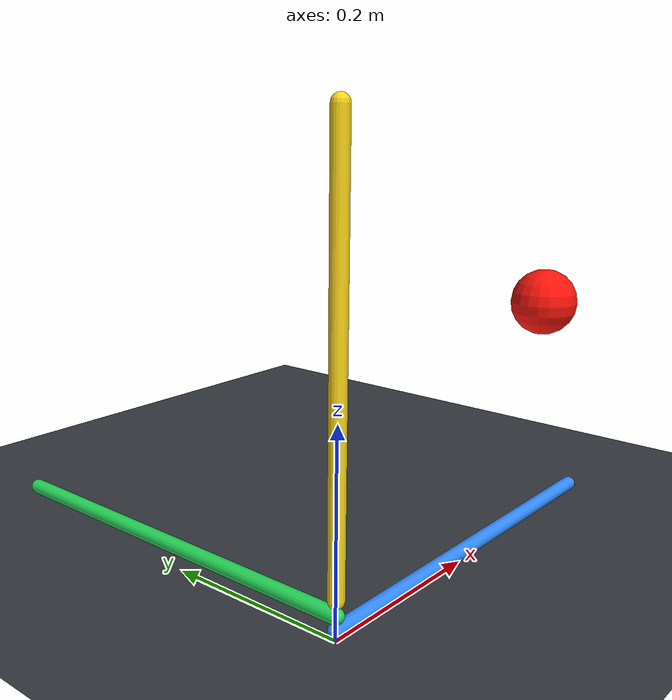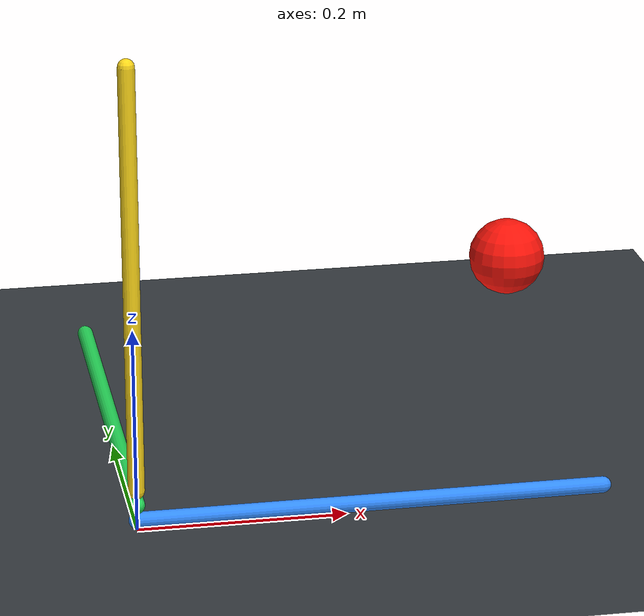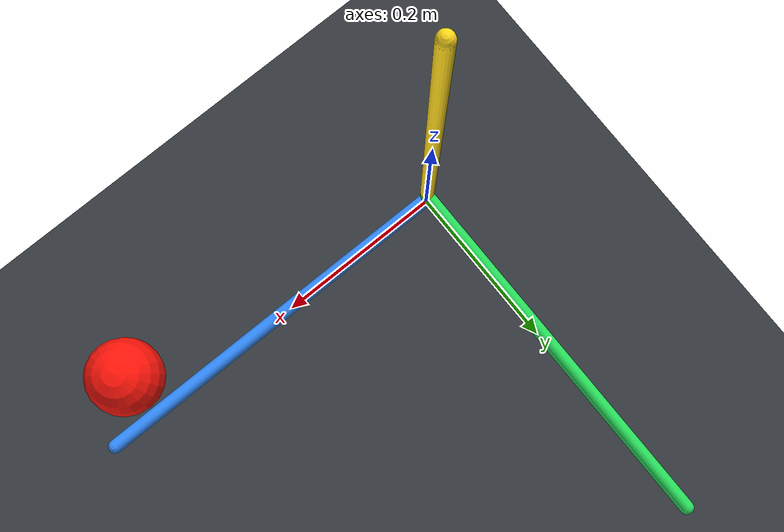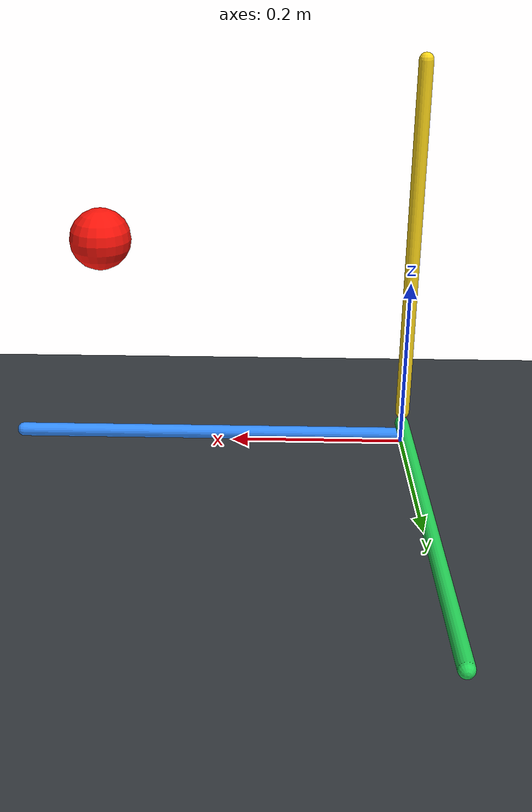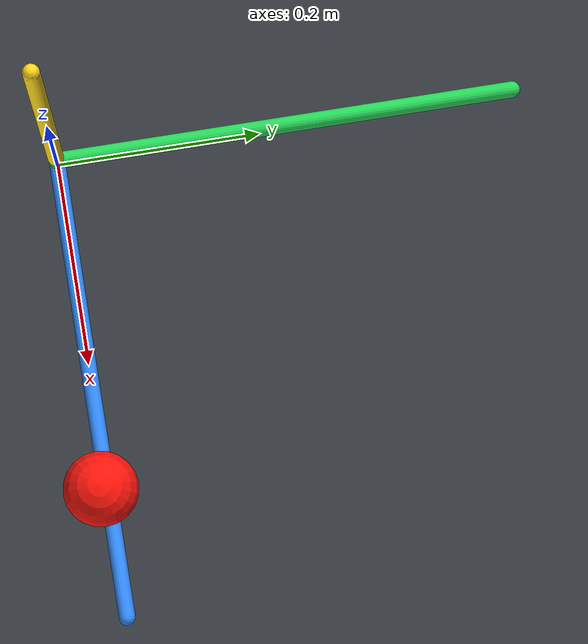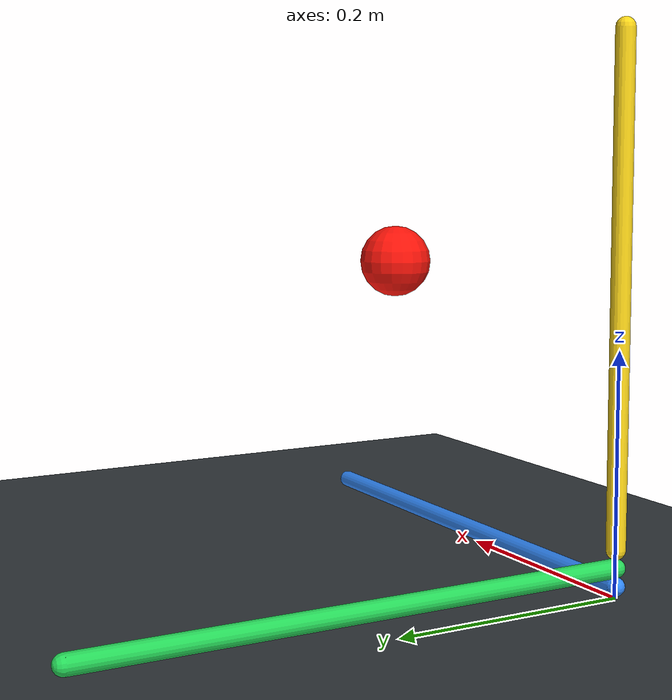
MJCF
<mujoco model="quest_arm_channel_target_ball">
  <compiler angle="radian"/>

  <option timestep="0.005" gravity="0 0 0"/>

  <visual>
    <headlight diffuse="0.6 0.6 0.6" ambient="0.35 0.35 0.35" specular="0.1 0.1 0.1"/>
    <rgba haze="0.15 0.18 0.22 1"/>
  </visual>

  <asset>
    <texture name="grid" type="2d" builtin="checker" width="512" height="512" rgb1="0.18 0.2 0.22" rgb2="0.24 0.26 0.28"/>
    <material name="grid" texture="grid" texrepeat="6 6" reflectance="0.05"/>
    <material name="target_red" rgba="1 0.08 0.04 0.9"/>
    <material name="forward_x" rgba="0.2 0.55 1 1"/>
    <material name="left_y" rgba="0.15 0.85 0.35 1"/>
    <material name="up_z" rgba="1 0.85 0.1 1"/>
  </asset>

  <worldbody>
    <light pos="0 -1.5 2.5" dir="0 1 -1"/>
    <camera name="overview" pos="1.0 -1.4 0.85" xyaxes="0.82 0.57 0 -0.28 0.4 0.87"/>

    <geom name="floor" type="plane" size="1.2 1.2 0.02" material="grid"/>

    <!-- Debug B frame axes: +X forward, +Y left, +Z up. -->
    <geom name="b_forward_x" type="capsule" fromto="0 0 0.01 0.45 0 0.01" size="0.008" material="forward_x" contype="0" conaffinity="0"/>
    <geom name="b_left_y" type="capsule" fromto="0 0 0.025 0 0.45 0.025" size="0.008" material="left_y" contype="0" conaffinity="0"/>
    <geom name="b_up_z" type="capsule" fromto="0 0 0.04 0 0 0.45" size="0.008" material="up_z" contype="0" conaffinity="0"/>

    <!-- The script drives this mocap body from Quest wrist relative motion. -->
    <body name="quest_arm_target" mocap="true" pos="0.35 0 0.25">
      <geom name="quest_arm_target_ball" type="sphere" size="0.035" material="target_red" contype="0" conaffinity="0"/>
    </body>
  </worldbody>
</mujoco>
